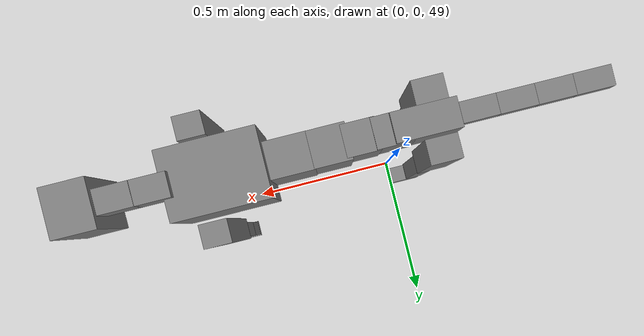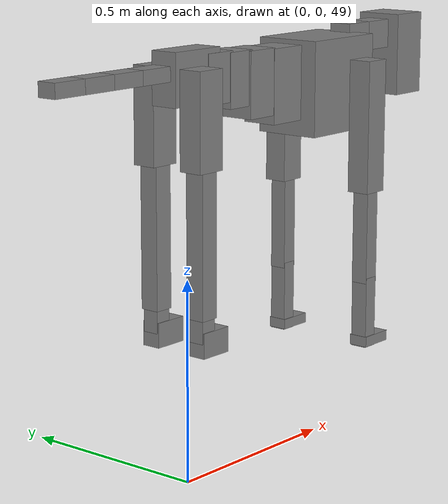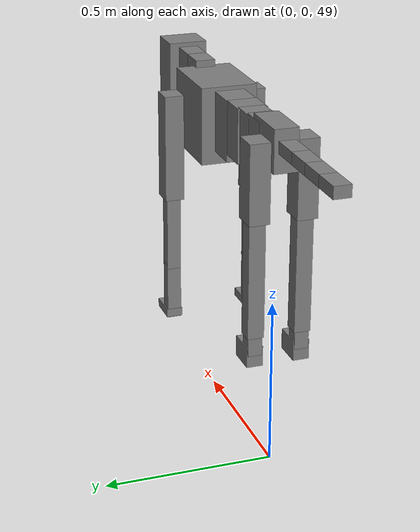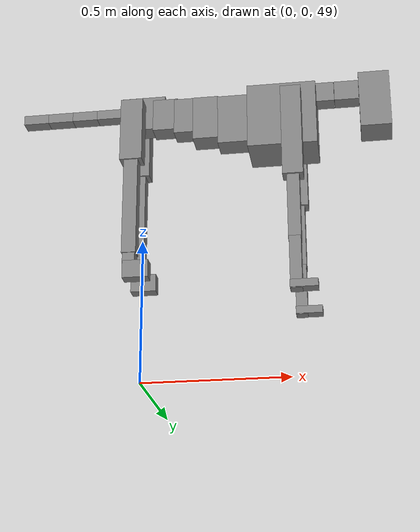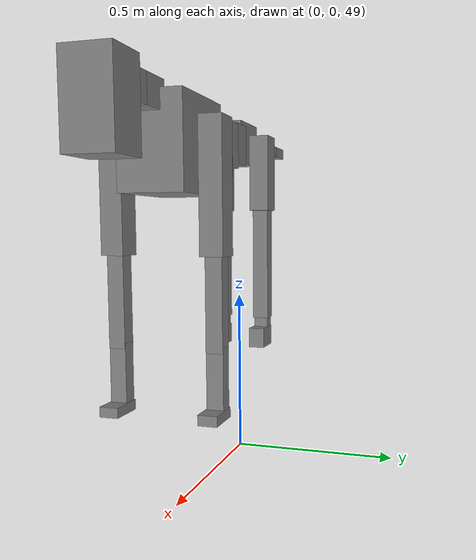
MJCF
<mujoco model="dog">

    <default>
        <joint armature="0.02" stiffness="1" damping="0.2" limited="true"/>
        <geom condim="3" friction="1 0.05 0.05" margin="0.01"/>
        <motor ctrllimited="true" ctrlrange="-1.0 1.0" forcelimited="true" gear="50"/>
    </default>

    <compiler inertiafromgeom="true" angle="radian"/>

    <option timestep="0.016" iterations="50" tolerance="1e-10" solver="Newton" jacobian="dense" cone="pyramidal"/>

    <size nconmax="20000" njmax="60000" nstack="5000000"/>
    <visual>
        <map force="0.1" zfar="30"/>
        <rgba haze="0.15 0.25 0.35 1"/>
        <quality shadowsize="2048"/>
        <global offwidth="800" offheight="800"/>
    </visual>

    <asset>
        <texture type="skybox" builtin="gradient" rgb1="0.3 0.5 0.7" rgb2="0 0 0" width="512" height="512"/>
        <texture name="texplane" type="2d" builtin="checker" rgb1=".2 .3 .4" rgb2=".1 0.15 0.2" width="512" height="512"
                 mark="cross" markrgb=".8 .8 .8"/>
        <texture name="texgeom" type="cube" builtin="flat" mark="cross" width="127" height="1278" rgb1="0.8 0.6 0.4"
                 rgb2="0.8 0.6 0.4" markrgb="1 1 1" random="0.01"/>

        <material name="matplane" reflectance="0.3" texture="texplane" texrepeat="1 1" texuniform="true"/>
        <material name="matgeom" texture="texgeom" texuniform="true" rgba="0.8 0.6 .4 1"/>
    </asset>

    <worldbody>
        <geom name="floor" pos="0 0 0" size="0 0 .25" type="plane" material="matplane" condim="3"/>

        <light directional="false" diffuse=".2 .2 .2" specular="0 0 0" pos="0 0 5" dir="0 0 -1" castshadow="false"/>
        <light mode="targetbodycom" target="torso" directional="false" diffuse=".8 .8 .8" specular="0.3 0.3 0.3"
               pos="0 0 4.0" dir="0 0 -1"/>

        <body name="root" pos="0 0 50">
            <freejoint name="root_1"/>
            <geom type="box" pos="0 0 -0.02" size="0.0774  0.0358  0.063" density="2030"/>

            <body name="spine1" pos="0.054 0 0">
                <joint name="spine1_y" axis="0 1 0" range="0 0.7" limited="true"/>
                <geom type="box" pos="0.02375 0 -0.03" size="0.04375  0.0375  0.05985" density="2030"/>

                <body name="spine2" pos="0.0612 0 0">
                    <joint name="spine2_y" axis="0 1 0" range="-0.15 0.15" limited="true"/>
                    <geom type="box" pos="0.03555  0  -0.04" size="0.04055  0.039  0.06615" density="2030"/>

                    <body name="spine3" pos="0.0730 0 0">
                        <joint name="spine3_y" axis="0 1 0" range="-0.15 0.15" limited="true"/>
                        <geom type="box" pos="0.03555  0  -0.057" size="0.04555  0.0445  0.081" density="2030"/>

                        <body name="spine4" pos="0.0780 0 0">
                            <joint name="spine4_y" axis="0 1 0" range="-0.15 0.15" limited="true"/>
                            <geom type="box" pos="0.05265  0  -0.07" size="0.05265  0.045  0.09135" density="2030"/>

                            <body name="torso" pos="0.1082 0 0">
                                <joint name="torso_y" axis="0 1 0" range="-0.15 0.15" limited="true"/>
                                <geom type="box" pos="0.11925  0  -0.085" size="0.11925  0.085  0.11745"
                                      density="2030"/>

                                <body name="neck1" pos="0.2160  0   0.0180">
                                    <joint name="neck1_y" axis="0 1 0" range="-1.2  -1" limited="true"/>
                                    <geom type="box" pos="0.0423  0  0" size="0.0423  0.03  0.036" density="2325"/>

                                    <body name="neck2" pos="0.0853  0  0">
                                        <joint name="neck2_y" axis="0 1 0" range="0.1  0" limited="true"/>
                                        <geom type="box" pos="0.0423  0  0" size="0.0423  0.03  0.036" density="2325"/>

                                        <body name="head" pos="0.0853  0  0">
                                            <joint name="head_y" axis="0 1 0" range="-0.3  -0.2" limited="true"/>
                                            <geom type="box" pos="0.0531  0  -0.055" size="0.0531  0.06  0.1044"
                                                  density="4030"/>

                                        </body>
                                    </body>
                                </body>

                                <body name="front_shoulder" pos="0.156  0   -0.0480">
                                    <joint name="front_shoulder_y" axis="0 1 0" range="-1 1.5" limited="true"/>
                                    <geom type="box" pos="0 0.13 -0.1383" size="0.0344  0.0294  0.1649" density="1158"/>
                                    <geom type="box" pos="0 -0.13 -0.1383" size="0.0344  0.0294  0.1649"
                                          density="1158"/>

                                    <body name="front_elbow" pos="0  0  -0.2766">
                                        <joint name="front_elbow_y" axis="0 1 0" range="-2 0" limited="true"/>
                                        <geom type="box" pos="0 0.13 -0.1297" size="0.0210  0.0214  0.1297"
                                              density="1081"/>
                                        <geom type="box" pos="0 -0.13 -0.1297" size="0.0210  0.0214  0.1297"
                                              density="1081"/>

                                        <body name="front_wrist" pos="0  0  -0.2594">
                                            <joint name="front_wrist_y" axis="0 1 0" range="-0.2 0" limited="true"/>
                                            <geom type="box" pos="0 0.13 -0.0768" size="0.0194  0.0216  0.0899"
                                                  density="1664"/>
                                            <geom type="box" pos="0 -0.13 -0.0768" size="0.0194  0.0216  0.0899"
                                                  density="1664"/>

                                            <body name="front_finger_end" pos="0  0  -0.1535">
                                                <joint name="front_finger_y" axis="0 1 0" range="-0.4 1"
                                                       limited="true"/>
                                                <geom type="box" pos="0.0247  0.13  0.0020"
                                                      size="0.0452  0.0247  0.0130" density="1515"/>
                                                <geom type="box" pos="0.0247  -0.13  0.0020"
                                                      size="0.0452  0.0247  0.0130" density="1515"/>

                                            </body>

                                        </body>
                                    </body>
                                </body>

                            </body>
                        </body>
                    </body>
                </body>
            </body>

            <body name="back_hip" pos="-0.03 0 -0.018">
                <joint name="back_hip_y" axis="0 1 0" range="-1.5 0.3" limited="true"/>
                <geom type="box" pos="0 0.07 -0.0935" size="0.0387  0.0303  0.1163" density="1154"/>
                <geom type="box" pos="0 -0.07 -0.0935" size="0.0387  0.0303  0.1163" density="1154"/>

                <body name="back_knee" pos="0  0  -0.1870">
                    <joint name="back_knee_y" axis="0 1 0" range="0 2.8" limited="true"/>
                    <geom type="box" pos="0 0.07 -0.1763" size="0.0245  0.0241  0.1918" density="1227"/>
                    <geom type="box" pos="0 -0.07 -0.1763" size="0.0245  0.0241  0.1918" density="1227"/>

                    <body name="back_ankle" pos="0  0  -0.3525">
                        <joint name="back_ankle_y" axis="0 1 0" range="-2.2 0" limited="true"/>
                        <geom type="box" pos="0 0.07 -0.0297" size="0.0211  0.0211  0.0410" density="1284"/>
                        <geom type="box" pos="0 -0.07 -0.0297" size="0.0211  0.0211  0.0410" density="1284"/>

                        <body name="back_toe_end" pos="0  0  -0.0595">
                            <joint name="back_toe_y" axis="0 1 0" range="-0.4 1" limited="true"/>
                            <geom type="box" pos="0.0239  0.07  -0.0154" size="0.0438  0.0239  0.0304" density="1515"/>
                            <geom type="box" pos="0.0239  -0.07  -0.0154" size="0.0438  0.0239  0.0304" density="1515"/>

                        </body>
                    </body>
                </body>
            </body>

            <body name="tail1" pos="-0.074 0 -0.006">
                <joint name="tail1_y" axis="0 1 0" range="-0.2 0.2" limited="true"/>
                <geom type="box" pos="-0.0536  0  0" size="0.045  0.025  0.0175" density="1587"/>

                <body name="tail2" pos="-0.09 0 0">
                    <joint name="tail2_y" axis="0 1 0" range="-0.2 0.2" limited="true"/>
                    <geom type="box" pos="-0.0536  0  0" size="0.045  0.025  0.0175" density="1587"/>

                    <body name="tail3" pos="-0.09 0 0">
                        <joint name="tail3_y" axis="0 1 0" range="-0.2 0.2" limited="true"/>
                        <geom type="box" pos="-0.0536  0  0" size="0.045  0.025  0.0175" density="1587"/>

                        <body name="tail4" pos="-0.09 0 0">
                            <joint name="tail4_y" axis="0 1 0" range="-0.2 0.2" limited="true"/>
                            <geom type="box" pos="-0.0536  0  0" size="0.045  0.025  0.0175" density="1587"/>

                        </body>
                    </body>
                </body>
            </body>
        </body>
    </worldbody>

    <actuator>
        <motor joint="spine1_y" forcerange="-150 150     "/>
        <motor joint="spine2_y" forcerange="-150 150     "/>
        <motor joint="spine3_y" forcerange="-150 150     "/>
        <motor joint="spine4_y" forcerange="-150 150     "/>
        <motor joint="torso_y" forcerange="-150 150     "/>
        <motor joint="neck1_y" forcerange="-100 100       "/>
        <motor joint="neck2_y" forcerange="-100 100       "/>
        <motor joint="head_y" forcerange="-150 150       "/>
        <motor joint="front_shoulder_y" forcerange="-159.72 136.12"/>
        <motor joint="front_elbow_y" forcerange="-125.47 130.36"/>
        <motor joint="front_wrist_y" forcerange="-97.19 75.32"/>
        <motor joint="front_finger_y" forcerange="-65.95 25.54"/>
        <motor joint="back_hip_y" forcerange="-297.11 307.46"/>
        <motor joint="back_knee_y" forcerange="-316.88 234.13"/>
        <motor joint="back_angle_y" forcerange="-149.94 87.67"/>
        <motor joint="back_toe_y" forcerange="-27.09 84.05"/>
        <motor joint="tail1_y" forcerange="-50 50     "/>
        <motor joint="tail2_y" forcerange="-50 50     "/>
        <motor joint="tail3_y" forcerange="-50 50     "/>
        <motor joint="tail4_y" forcerange="-50 50     "/>
    </actuator>
</mujoco>
